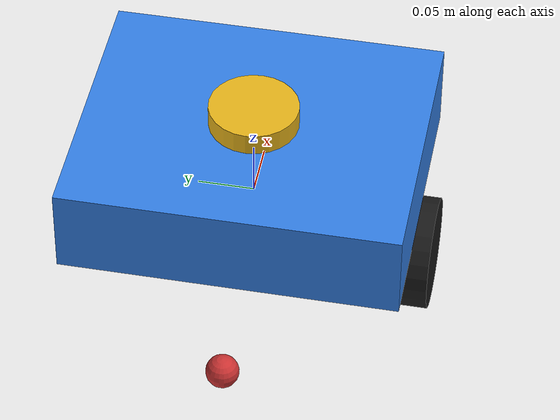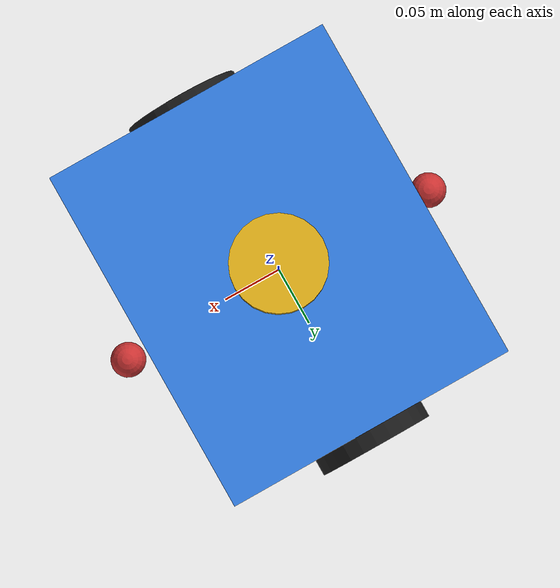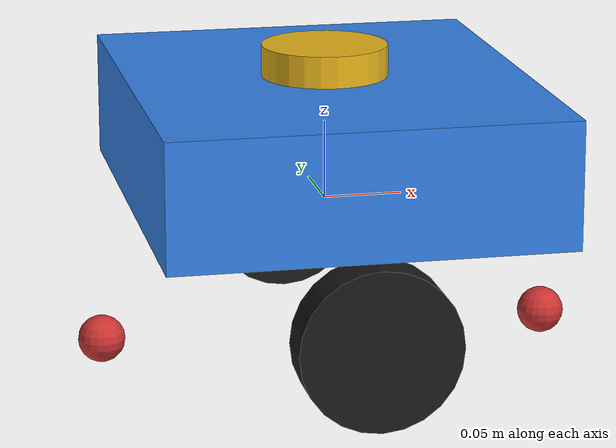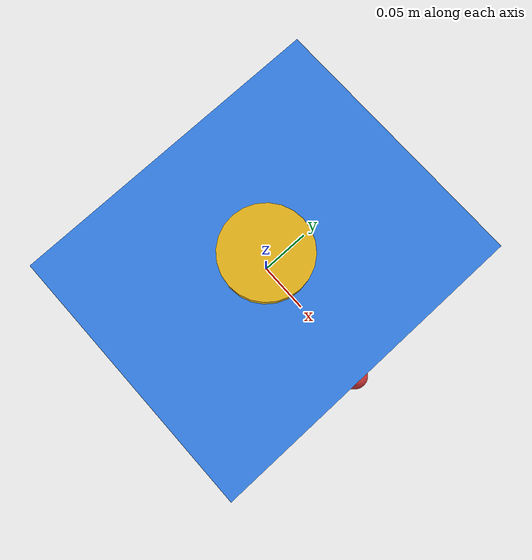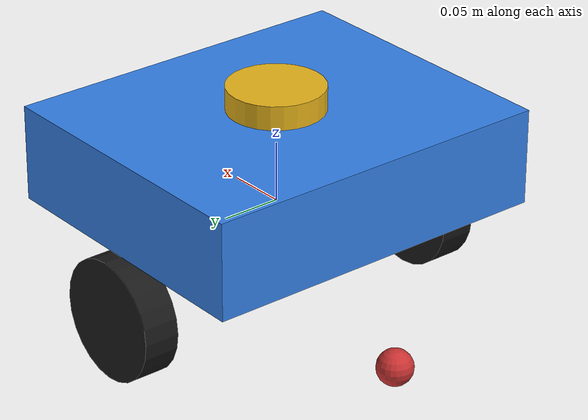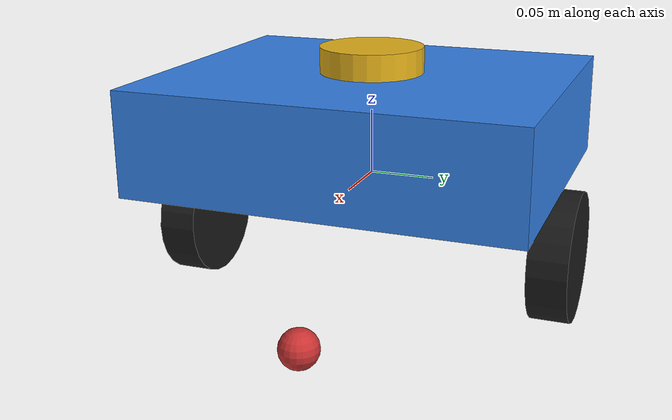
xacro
<?xml version="1.0"?>

  <!-- 1. 建模参数    -->
<robot xmlns:xacro="http://www.ros.org/wiki/xacro" name="diff_robot">

  <xacro:property name="base_width"   value="0.30" />   <!-- 轮距 L (m)                   -->
  <xacro:property name="wheel_radius" value="0.05" />   <!-- 轮半径 r (m)                 -->
  <xacro:property name="base_length"  value="0.25" />   <!-- 底盘长 (m)                    -->
  <xacro:property name="base_height"  value="0.08" />   <!-- 底盘高 (m)                    -->
  <xacro:property name="wheel_width"  value="0.03" />   <!-- 轮宽 (m)                      -->
  <xacro:property name="caster_radius" value="0.015" /> <!-- 万向轮半径 (m)                -->

  <!-- 2. 材质定义（仅用于可视化）                      -->
  <material name="base_color">
    <color rgba="0.2 0.5 0.9 1.0"/>   <!-- 亮蓝色底盘 -->
  </material>
  <material name="wheel_color">
    <color rgba="0.1 0.1 0.1 1.0"/>   <!-- 黑色车轮 -->
  </material>
  <material name="caster_color">
    <color rgba="0.8 0.2 0.2 1.0"/>   <!-- 红色万向轮 -->
  </material>
  <material name="sensor_color">
    <color rgba="0.9 0.7 0.1 1.0"/>   <!-- 金色传感器 -->
  </material>

  <!-- 3. base_link                                              -->
  <!--    inertial parameter: mass = 1.0kg, uniform cuboid       -->
<link name="base_link">
  <visual>
    <geometry>
      <box size="${base_length} ${base_width} ${base_height}"/>
    </geometry>
    <origin xyz="0 0 ${base_height/2}" rpy="0 0 0"/>
    <material name="base_color"/>
  </visual>
  <collision>
    <geometry>
      <box size="${base_length} ${base_width} ${base_height}"/>
    </geometry>
    <origin xyz="0 0 ${base_height/2}" rpy="0 0 0"/>
  </collision>
  <inertial>
    <!-- 质心在底盘几何中心，惯量按均匀长方体公式 m(a²+b²)/12 计算 -->
    <origin xyz="0 0 ${base_height/2}" rpy="0 0 0"/>
    <mass value="1.0"/>
    <inertia ixx="${(base_width*base_width + base_height*base_height)/12}" ixy="0.0" ixz="0.0"
             iyy="${(base_length*base_length + base_height*base_height)/12}" iyz="0.0"
             izz="${(base_length*base_length + base_width*base_width)/12}"/>
  </inertial>
</link>

  <!-- 4. left_wheel_link                                         -->
  <!--    车轮是圆柱体，绕 Y 轴旋转                                  -->
  <link name="left_wheel_link">
    <visual>
      <geometry>
        <cylinder radius="${wheel_radius}" length="${wheel_width}"/>
      </geometry>
      <origin xyz="0 0 0" rpy="${pi/2} 0 0"/>
      <material name="wheel_color"/>
    </visual>
    <!-- collision 用球体而不是圆柱：圆柱和地面的接触点会落在轮子内侧边缘
         （y=±0.135），实际转向轮距变成 0.27m，而 DiffDrive 按 0.30m 算 odom，
         实测原地转向 odom 少报约 10%。球体接触点正好在轮子中线上，
         实测 odom 与真值一致。visual 仍是圆柱，外观不变。 -->
    <collision>
      <geometry>
        <sphere radius="${wheel_radius}"/>
      </geometry>
    </collision>
    <inertial>
      <!-- 均匀圆柱体：转轴(Y) = mr²/2，其余 = m(3r²+h²)/12 -->
      <mass value="0.05"/>
      <inertia ixx="${0.05*(3*wheel_radius*wheel_radius + wheel_width*wheel_width)/12}" ixy="0.0" ixz="0.0"
               iyy="${0.05*wheel_radius*wheel_radius/2}" iyz="0.0"
               izz="${0.05*(3*wheel_radius*wheel_radius + wheel_width*wheel_width)/12}"/>
    </inertial>
  </link>
 <!--加摩擦力-->
  <gazebo reference="left_wheel_link">
  <mu1>1.0</mu1>
  <mu2>1.0</mu2>
  <material>Gazebo/Black</material>
</gazebo>

  <!-- 左轮关节: 连续旋转 (continuous)，绕 Y 轴旋转                   -->
  <!-- 位置: 底盘左侧 (x=0, y=+base_width/2, z=-wheel_radius)       -->
  <!--        车轮顶部贴着底盘底面，车轮底部在 base_link 下方 2r 处（即地面） -->
  <joint name="left_wheel_joint" type="continuous">
    <parent link="base_link"/>
    <child link="left_wheel_link"/>
    <origin xyz="0 ${base_width/2} ${-wheel_radius}" rpy="0 0 0"/>
    <axis xyz="0 1 0"/>   <!-- 绕 Y 轴旋转 -->
    <limit effort="50" velocity="20"/>
  </joint>

  <!-- 5. 右轮 (right_wheel_link) - 完全对称                         -->
  <link name="right_wheel_link">
    <visual>
      <geometry>
        <cylinder radius="${wheel_radius}" length="${wheel_width}"/>
      </geometry>
      <origin xyz="0 0 0" rpy="${pi/2} 0 0"/>
      <material name="wheel_color"/>
    </visual>
    <!-- 同左轮：collision 用球体，接触点在轮子中线上 -->
    <collision>
      <geometry>
        <sphere radius="${wheel_radius}"/>
      </geometry>
    </collision>
    <inertial>
      <!-- 均匀圆柱体：转轴(Y) = mr²/2，其余 = m(3r²+h²)/12 -->
      <mass value="0.05"/>
      <inertia ixx="${0.05*(3*wheel_radius*wheel_radius + wheel_width*wheel_width)/12}" ixy="0.0" ixz="0.0"
               iyy="${0.05*wheel_radius*wheel_radius/2}" iyz="0.0"
               izz="${0.05*(3*wheel_radius*wheel_radius + wheel_width*wheel_width)/12}"/>
    </inertial>
  </link>

   <!--加摩擦力-->
<gazebo reference="right_wheel_link">
  <mu1>1.0</mu1>
  <mu2>1.0</mu2>
  <material>Gazebo/Black</material>
</gazebo>

  <!-- 右轮关节: 位置在底盘右侧 (x=0, y=-base_width/2, z=-wheel_radius) -->
  <joint name="right_wheel_joint" type="continuous">
    <parent link="base_link"/>
    <child link="right_wheel_link"/>
    <origin xyz="0 ${-base_width/2} ${-wheel_radius}" rpy="0 0 0"/>
    <axis xyz="0 1 0"/>
    <limit effort="50" velocity="20"/>
  </joint>

  <!-- 6. 万向轮 (前后各一个，支撑平衡，无动力)                    -->
  <!--    使用固定关节 (fixed)，因为不需要主动旋转建模               -->
  <link name="front_caster_link">
    <visual>
      <geometry>
        <sphere radius="${caster_radius}"/>
      </geometry>
      <origin xyz="0 0 0" rpy="0 0 0"/>
      <material name="caster_color"/>
    </visual>
    <collision>
      <geometry>
        <sphere radius="${caster_radius}"/>
      </geometry>
      <origin xyz="0 0 0" rpy="0 0 0"/>
    </collision>
    <inertial>
      <mass value="0.02"/>
      <inertia ixx="0.00001" ixy="0.0" ixz="0.0"
               iyy="0.00001" iyz="0.0"
               izz="0.00001"/>
    </inertial>
  </link>

  <joint name="front_caster_joint" type="fixed">
    <parent link="base_link"/>
    <child link="front_caster_link"/>
    <!-- 万向轮底部与驱动轮底部齐平（都在 z = -2r），否则会悬空导致车身前后倾斜 -->
    <origin xyz="${base_length/2 + 0.02} 0 ${-(2*wheel_radius - caster_radius)}" rpy="0 0 0"/>
  </joint>

  <link name="rear_caster_link">
    <visual>
      <geometry>
        <sphere radius="${caster_radius}"/>
      </geometry>
      <origin xyz="0 0 0" rpy="0 0 0"/>
      <material name="caster_color"/>
    </visual>
    <collision>
      <geometry>
        <sphere radius="${caster_radius}"/>
      </geometry>
      <origin xyz="0 0 0" rpy="0 0 0"/>
    </collision>
    <inertial>
      <mass value="0.02"/>
      <inertia ixx="0.00001" ixy="0.0" ixz="0.0"
               iyy="0.00001" iyz="0.0"
               izz="0.00001"/>
    </inertial>
  </link>

  <joint name="rear_caster_joint" type="fixed">
    <parent link="base_link"/>
    <child link="rear_caster_link"/>
    <origin xyz="${-base_length/2 - 0.02} 0 ${-(2*wheel_radius - caster_radius)}" rpy="0 0 0"/>
  </joint>

  <!-- 万向轮零摩擦：固定关节的球体不会滚动，有摩擦就会拖地、转弯时干扰里程计 -->
<gazebo reference="front_caster_link">
  <mu1>0.0</mu1>
  <mu2>0.0</mu2>
</gazebo>
<gazebo reference="rear_caster_link">
  <mu1>0.0</mu1>
  <mu2>0.0</mu2>
</gazebo>

  <!-- 7. 激光雷达 (laser_link) - 安装在底盘顶部                    -->
  <link name="laser_link">
    <visual>
      <geometry>
        <cylinder radius="0.04" length="0.02"/>
      </geometry>
      <origin xyz="0 0 -0.01" rpy="0 0 0"/>
      <material name="sensor_color"/>
    </visual>
    <inertial>
      <mass value="0.03"/>
      <inertia ixx="0.00001" ixy="0.0" ixz="0.0"
               iyy="0.00001" iyz="0.0"
               izz="0.00001"/>
    </inertial>
  </link>
<gazebo reference="laser_joint">
  <preserveFixedJoint>true</preserveFixedJoint>
</gazebo>

  <joint name="laser_joint" type="fixed">
    <parent link="base_link"/>
    <child link="laser_link"/>
    <origin xyz="0 0 ${base_height + 0.02}" rpy="0 0 0"/>
  </joint>

  <!-- 8. IMU (imu_link) - 惯性测量单元                             -->
  <link name="imu_link">
    <visual>
      <geometry>
        <box size="0.03 0.03 0.02"/>
      </geometry>
      <origin xyz="0 0 0" rpy="0 0 0"/>
      <material name="sensor_color"/>
    </visual>
    <!-- 不设 collision：IMU 在底盘内部，碰撞由底盘 collision box 承担 -->
    <inertial>
      <mass value="0.01"/>
      <inertia ixx="0.000001" ixy="0.0" ixz="0.0"
               iyy="0.000001" iyz="0.0"
               izz="0.000001"/>
    </inertial>
  </link>

  <joint name="imu_joint" type="fixed">
    <parent link="base_link"/>
    <child link="imu_link"/>
    <origin xyz="0 0 ${base_height/2}" rpy="0 0 0"/>
  </joint>
<gazebo reference="imu_joint">
  <preserveFixedJoint>true</preserveFixedJoint>
</gazebo>
  <!-- 9. Gazebo 插件                                            -->
  <!--    - 差速驱动插件：订阅 /cmd_vel，控制车轮转动，发布里程计    -->
  <!--    - 激光雷达插件：发布 /scan 话题                           -->
  <!--    - IMU 插件：发布 /imu/data 话题                          -->

  <!-- 9-a: Gazebo 差速驱动插件 -->
  <!--
    这个插件做三件事:
    1. 订阅 /cmd_vel 话题，接收线速度和角速度指令
    2. 根据轮距 L 和轮半径 r 将 v/ω 转换为左右轮速度
    3. 驱动左右轮转动，并发布 /odom 里程计话题
  -->
<gazebo>
<plugin name="gz::sim::systems::DiffDrive" filename="libgz-sim-diff-drive-system.so">
    <left_joint>left_wheel_joint</left_joint>
    <right_joint>right_wheel_joint</right_joint>
    <wheel_separation>${base_width}</wheel_separation>
    <wheel_radius>${wheel_radius}</wheel_radius>
    <max_linear_acceleration>${5.0 * wheel_radius}</max_linear_acceleration>
    <topic>cmd_vel</topic>
    <odom_topic>odom</odom_topic>
    <frame_id>odom</frame_id>
    <child_frame_id>base_link</child_frame_id>
  </plugin>
</gazebo>
<!-- 反馈轮子角度给/joint_states -->
<gazebo>
  <plugin filename="libgz-sim-joint-state-publisher-system.so"
          name="gz::sim::systems::JointStatePublisher">
    <joint_name>left_wheel_joint</joint_name>
    <joint_name>right_wheel_joint</joint_name>
  </plugin>
</gazebo>
<!-- 9-b: Gazebo 激光雷达插件 -->
<gazebo reference="laser_link">
  <sensor type="gpu_lidar" name="laser">
    <pose>0 0 0 0 0 0</pose>
    <visualize>true</visualize>
    <update_rate>10</update_rate>
    <topic>scan</topic>
    <gz_frame_id>laser_link</gz_frame_id>
    <lidar>
      <scan>
        <horizontal>
         <samples>360</samples>
         <resolution>1</resolution>
         <!-- 360 束、每束 1°：首尾不重叠，最后一束在 π - 1° -->
         <min_angle>${-pi}</min_angle>
         <max_angle>${pi - 2*pi/360}</max_angle>
       </horizontal>
       <vertical>
         <samples>1</samples>
         <resolution>1</resolution>
         <min_angle>0</min_angle>
         <max_angle>0</max_angle>
       </vertical>
  </scan>
  <range>
    <min>0.1</min>
    <max>10.0</max>
    <resolution>0.01</resolution>
  </range>
  <noise>
    <type>gaussian</type>
    <mean>0.0</mean>
    <stddev>0.02</stddev>
  </noise>
</lidar>
  </sensor>
</gazebo>

  <!-- 9-c: Gazebo IMU 插件 -->
<gazebo reference="imu_link">
  <sensor type="imu" name="imu_sensor">
  <pose>0 0 0 0 0 0</pose>
  <visualize>false</visualize>
  <update_rate>50</update_rate>
  <topic>imu/data</topic>
  <gz_frame_id>imu_link</gz_frame_id>
  <imu>
    <angular_velocity>
      <x><noise type="gaussian"><mean>0.0</mean><stddev>0.01</stddev></noise></x>
      <y><noise type="gaussian"><mean>0.0</mean><stddev>0.01</stddev></noise></y>
      <z><noise type="gaussian"><mean>0.0</mean><stddev>0.01</stddev></noise></z>
    </angular_velocity>
    <linear_acceleration>
      <x><noise type="gaussian"><mean>0.0</mean><stddev>0.02</stddev></noise></x>
      <y><noise type="gaussian"><mean>0.0</mean><stddev>0.02</stddev></noise></y>
      <z><noise type="gaussian"><mean>0.0</mean><stddev>0.02</stddev></noise></z>
    </linear_acceleration>
  </imu>
</sensor>
</gazebo>
</robot>
<!-- ========== 文件结束 ========== -->
